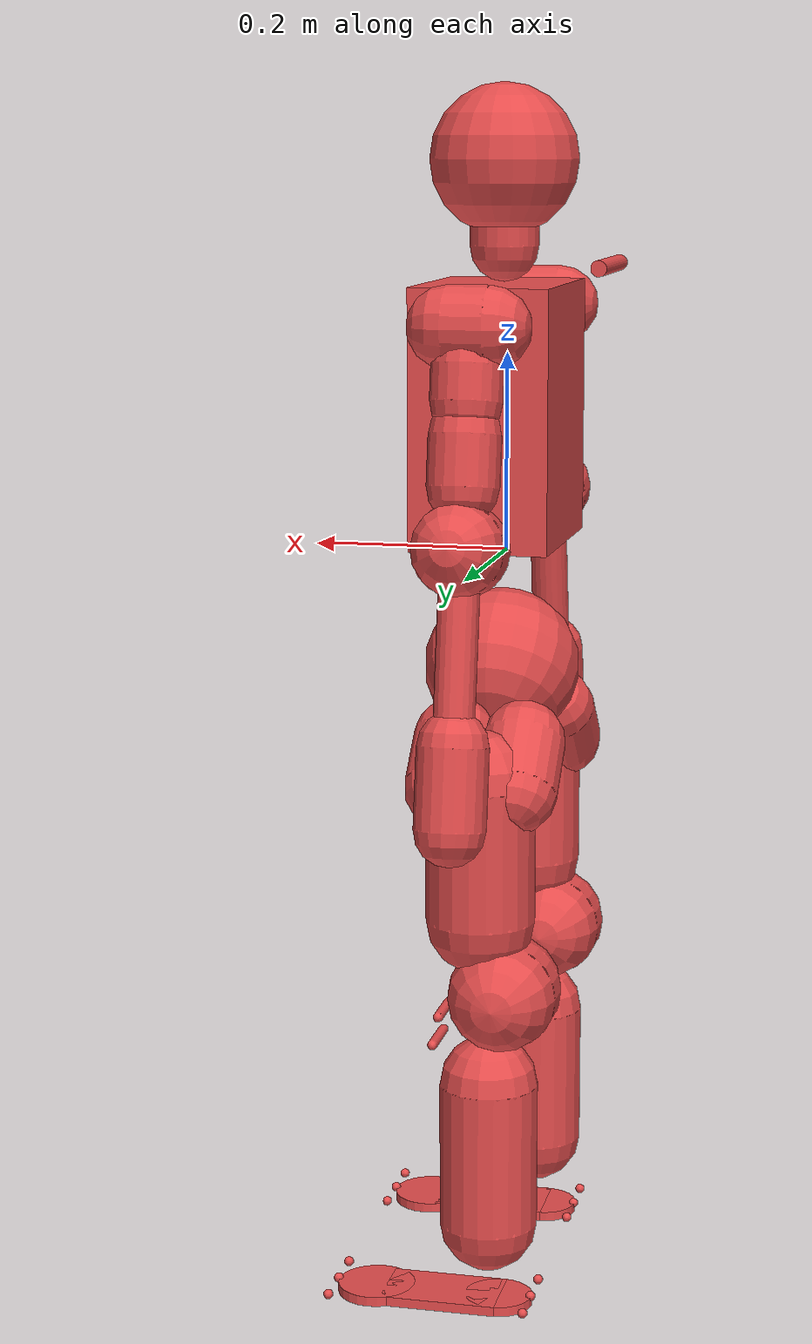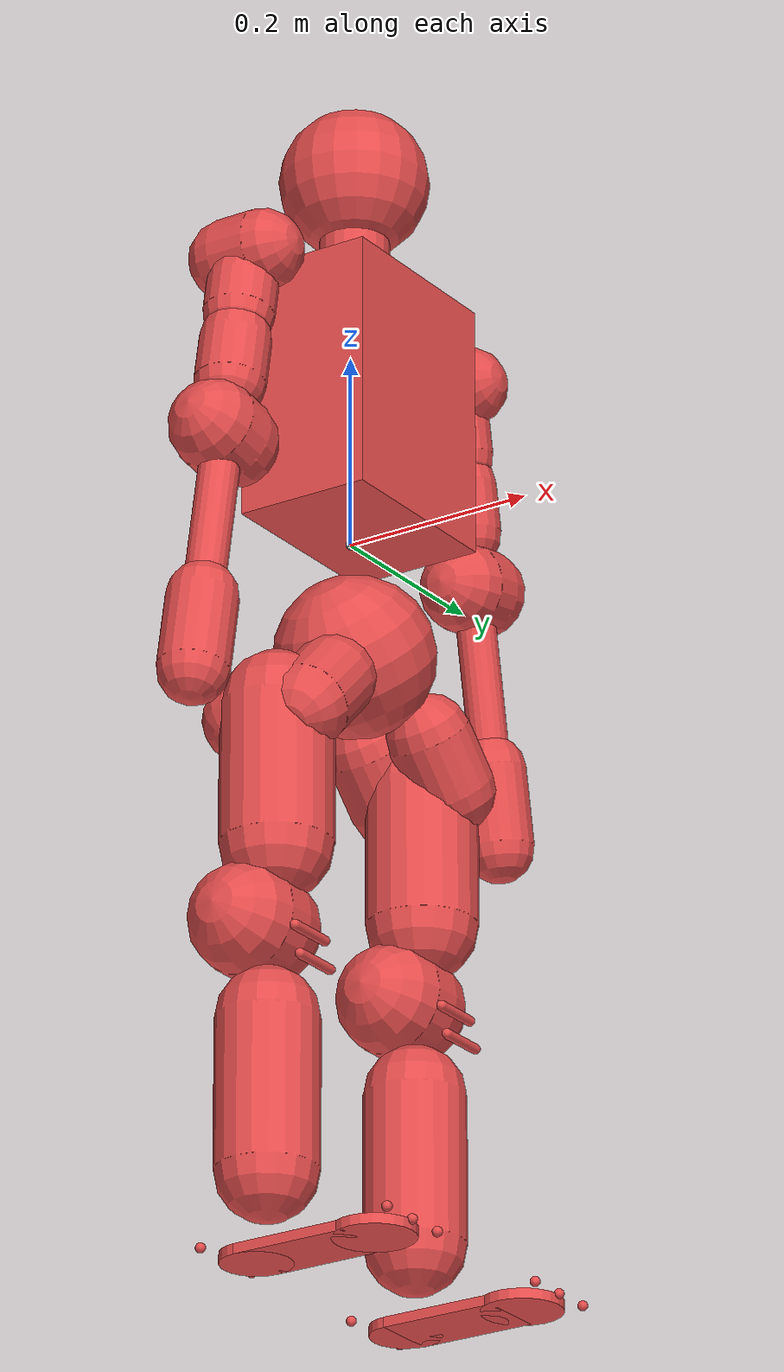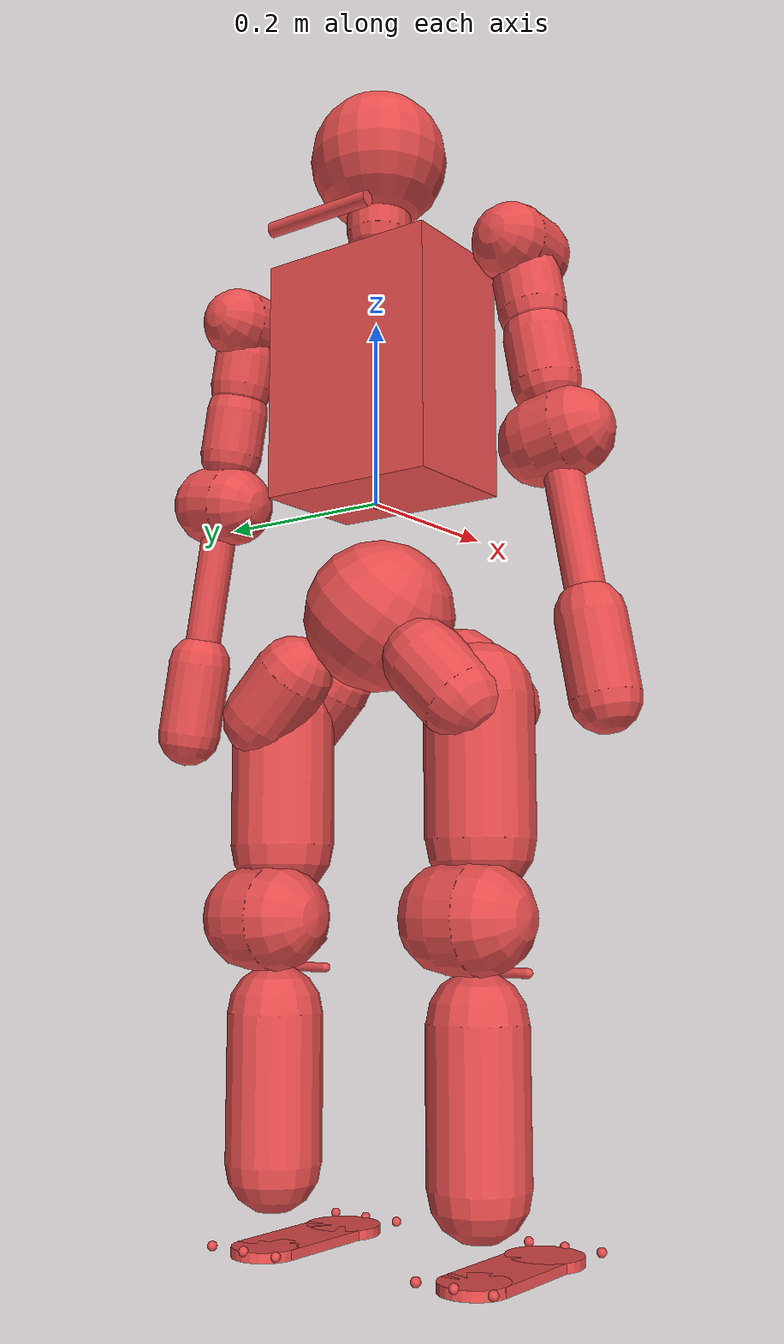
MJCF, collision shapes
<mujoco model="biped_s17">
  <compiler angle="radian" meshdir="../meshes/"/>
  <default>
    <default class="collision">
      <geom material="collision" contype="1" conaffinity="1" user="2" rgba="0.9 0.3 0.3 0.2"/>
    </default>
  </default>
  <asset>
    <material name="collision"/>
    <mesh name="torso" file="torso.STL"/>
    <mesh name="waist" file="waist.STL"/>
    <mesh name="l_leg_pitch" file="l_leg_pitch.STL"/>
    <mesh name="l_leg_roll" file="l_leg_roll.STL"/>
    <mesh name="l_leg_yaw" file="l_leg_yaw.STL"/>
    <mesh name="l_knee" file="l_knee.STL"/>
    <mesh name="l_foot_pitch" file="l_foot_pitch.STL"/>
    <mesh name="l_foot_roll" file="l_foot_roll.STL"/>
    <mesh name="r_leg_pitch" file="r_leg_pitch.STL"/>
    <mesh name="r_leg_roll" file="r_leg_roll.STL"/>
    <mesh name="r_leg_yaw" file="r_leg_yaw.STL"/>
    <mesh name="r_knee" file="r_knee.STL"/>
    <mesh name="r_foot_pitch" file="r_foot_pitch.STL"/>
    <mesh name="r_foot_roll" file="r_foot_roll.STL"/>
    <mesh name="l_arm_pitch" file="l_arm_pitch.STL"/>
    <mesh name="l_arm_roll" file="l_arm_roll.STL"/>
    <mesh name="l_arm_yaw" file="l_arm_yaw.STL"/>
    <mesh name="l_forearm" file="l_forearm.STL"/>
    <mesh name="r_arm_pitch" file="r_arm_pitch.STL"/>
    <mesh name="r_arm_roll" file="r_arm_roll.STL"/>
    <mesh name="r_arm_yaw" file="r_arm_yaw.STL"/>
    <mesh name="r_forearm" file="r_forearm.STL"/>
    <mesh name="head_yaw" file="head_yaw.STL"/>
    <mesh name="head_pitch" file="head_pitch.STL"/>
  </asset>

  <worldbody>
    <body name="base_link">
      <site name="base_imu" pos="0 0 0"/>
      <inertial pos="0.001 0 -0.122" quat="0.707107 0.707107 0 0" mass="4.8567" diaginertia="0.023 0.017 0.015"/>
      <joint name="dummy_to_base_link" type="free" limited="false" actuatorfrclimited="false"/>
      <geom type="mesh" contype="0" conaffinity="0" group="1" density="0" rgba="1 1 1 1" mesh="waist"/>
      <geom size="0.08" pos="0.005 0 -0.12" quat="0.923764 0.382961 0 0" class="collision"/>

      <body name="leg_l1_link" pos="0 0.124412 -0.221153">
          <inertial pos="-0.00063257 -0.0331968 0.0331968" quat="0.306976 0.638057 0.270546 0.652268" mass="0.625689" diaginertia="0.0019949 0.001909 0.00114913"/>
          <joint name="leg_l1_joint" pos="0 0 0" axis="0 0.707107 -0.707107" range="-3.228 2.44346" actuatorfrcrange="-150 150" armature="0.003" damping="0.2" frictionloss="0.0"/>
          <geom type="mesh" contype="0" conaffinity="0" group="1" density="0" rgba="1 1 1 1" mesh="l_leg_pitch"/>
          <geom size="0.042 0.03" pos="-0.035 -0.02 0.02" quat="0.923764 0.382961 0 0" type="capsule" class="collision"/>
          <geom size="0.042 0.03" pos="0.035 -0.02 0.02" quat="0.923764 0.382961 0 0" type="capsule" class="collision"/>
          <body name="leg_l2_link">
            <inertial pos="0.00998392 5.405e-05 -0.00920979" quat="0.998376 -0.00280518 0.0563977 0.00753194" mass="2.0316" diaginertia="0.00460461 0.00412288 0.00338322"/>
            <joint name="leg_l2_joint" pos="0 0 0" axis="1 0 0" range="-0.837758 2.40855" actuatorfrcrange="-150 150" armature="0.003" damping="0.2" frictionloss="0.0"/>
            <geom type="mesh" contype="0" conaffinity="0" group="1" density="0" rgba="1 1 1 1" mesh="l_leg_roll"/>
            <geom size="0.055 0.07" pos="0 0 -0.065" type="capsule" class="collision"/>
            <body name="leg_l3_link">
              <inertial pos="-0.0136391 -0.0013371 -0.157704" quat="0.680483 0.0858738 0.104775 0.720132" mass="3.38847" diaginertia="0.0151815 0.0146713 0.0049277"/>
              <joint name="leg_l3_joint" pos="0 0 0" axis="0 0 1" range="-1.7453 1.7453" actuatorfrcrange="-70 70" armature="0.003" damping="0.2" frictionloss="0.0"/>
              <geom type="mesh" contype="0" conaffinity="0" group="1" density="0" rgba="1 1 1 1" mesh="l_leg_yaw"/>
              <geom size="0.055 0.015" pos="-0.025 0 -0.21" quat="0.707388 0.706825 0 0" type="capsule" class="collision"/>
              <body name="leg_l4_link" pos="-0.03 0 -0.213">
                <inertial pos="0.022046 0.00442347 -0.114735" quat="0.834057 -0.0612911 0.0232855 0.547768" mass="2.61852" diaginertia="0.0123942 0.0119075 0.0029593"/>
                <joint name="leg_l4_joint" pos="0 0 0" axis="0 1 0" range="-0.0872665 2.53073" actuatorfrcrange="-150 150" armature="0.003" damping="0.2" frictionloss="0.0"/>
                <geom type="mesh" contype="0" conaffinity="0" group="1" density="0" rgba="1 1 1 1" mesh="l_knee"/>
                <geom size="0.05 0.075" pos="0.021 0 -0.17" type="capsule" class="collision"/>
                <geom size="0.005 0.025" pos="0.068 0 -0.02" quat="0.707388 0.706825 0 0" type="capsule" class="collision"/>
                <geom size="0.005 0.025" pos="0.074 0 -0.05" quat="0.707388 0.706825 0 0" type="capsule" class="collision"/>
                <body name="leg_l5_link" pos="0.03 0 -0.276">
                  <inertial pos="-0.00317025 1.08e-06 -0.00652874" quat="0.698397 0.110643 0.110643 0.698397" mass="0.108543" diaginertia="2.278e-05 1.98845e-05 1.08355e-05"/>
                  <joint name="leg_l5_joint" pos="0 0 0" axis="0 1 0" range="-0.872665 0.523599" actuatorfrcrange="-74 74" armature="0.003" damping="0.2" frictionloss="0.0"/>
                  <geom type="mesh" contype="0" conaffinity="0" group="1" density="0" rgba="1 1 1 1" mesh="l_foot_pitch"/>
                  <body name="leg_l6_link" pos="0 0 -0.018">
                    <inertial pos="0.0238891 0.00010137 -0.0169705" quat="-0.00314074 0.7384 -0.00332222 0.674348" mass="0.436108" diaginertia="0.00107223 0.000979832 0.000192516"/>
                    <joint name="leg_l6_joint" pos="0 0 0" axis="1 0 0" range="-0.261799 0.261799" actuatorfrcrange="-74 74" armature="0.003" damping="0.2" frictionloss="0.0"/>
                    <geom type="mesh" contype="0" conaffinity="0" group="1" density="0" rgba="1 1 1 1" mesh="l_foot_roll"/>
                    <geom size="0.035 0.005" pos="-0.02 0 -0.035" type="cylinder" class="collision"/>
                    <geom size="0.04 0.005" pos="0.11 0 -0.035" type="cylinder" class="collision"/>
                    <geom size="0.06 0.035 0.005" pos="0.038 0 -0.035" type="box" class="collision"/>
                    <geom size="0.005" pos="0.1510 0.0415 -0.03" type="sphere" class="collision"/>
                    <geom size="0.005" pos="-0.0538 0.0415 -0.03" type="sphere" class="collision"/>
                    <geom size="0.005" pos="0.1510 -0.0415 -0.03" type="sphere" class="collision"/>
                    <geom size="0.005" pos="-0.0538 -0.0415 -0.03" type="sphere" class="collision"/>
                    <geom size="0.005" pos="0.1510 0 -0.03" type="sphere" class="collision"/>
                    <geom size="0.005" pos="-0.0538 0 -0.03" type="sphere" class="collision"/>
                  </body>
                </body>
              </body>
            </body>
          </body>
        </body>
        <body name="leg_r1_link" pos="0 -0.124412 -0.221153">
          <inertial pos="-0.00063257 0.0331968 0.0331968" quat="0.652268 0.270546 0.638057 0.306976" mass="0.625689" diaginertia="0.0019949 0.001909 0.00114913"/>
          <joint name="leg_r1_joint" pos="0 0 0" axis="0 -0.707107 -0.707107" range="-2.44346 3.228" actuatorfrcrange="-150 150" armature="0.003" damping="0.2" frictionloss="0.0"/>
          <geom type="mesh" contype="0" conaffinity="0" group="1" density="0" rgba="1 1 1 1" mesh="r_leg_pitch"/>
          <geom size="0.042 0.03" pos="-0.035 0.02 0.02" quat="0.923764 -0.382961 0 0" type="capsule" class="collision"/>
          <geom size="0.042 0.03" pos="0.035 0.02 0.02" quat="0.923764 -0.382961 0 0" type="capsule" class="collision"/>
          <body name="leg_r2_link">
            <inertial pos="0.00998392 -5.405e-05 -0.00920979" quat="0.998376 0.00280518 0.0563977 -0.00753194" mass="2.0316" diaginertia="0.00460461 0.00412288 0.00338322"/>
            <joint name="leg_r2_joint" pos="0 0 0" axis="1 0 0" range="-2.40855 0.837758" actuatorfrcrange="-150 150" armature="0.003" damping="0.2" frictionloss="0.0"/>
            <geom type="mesh" contype="0" conaffinity="0" group="1" density="0" rgba="1 1 1 1" mesh="r_leg_roll"/>
            <geom size="0.055 0.07" pos="0 0 -0.065" type="capsule" class="collision"/>
            <body name="leg_r3_link">
              <inertial pos="-0.0136391 0.0013371 -0.157704" quat="0.720132 0.104775 0.0858738 0.680483" mass="3.38847" diaginertia="0.0151815 0.0146713 0.0049277"/>
              <joint name="leg_r3_joint" pos="0 0 0" axis="0 0 1" range="-1.7453 1.7453" actuatorfrcrange="-70 70" armature="0.003" damping="0.2" frictionloss="0.0"/>
              <geom type="mesh" contype="0" conaffinity="0" group="1" density="0" rgba="1 1 1 1" mesh="r_leg_yaw"/>
              <geom size="0.055 0.015" pos="-0.025 0 -0.21" quat="0.707388 0.706825 0 0" type="capsule" class="collision"/>
              <body name="leg_r4_link" pos="-0.03 0 -0.213">
                <inertial pos="0.022046 -0.00442347 -0.114735" quat="0.547768 0.0232855 -0.0612911 0.834057" mass="2.61852" diaginertia="0.0123942 0.0119075 0.0029593"/>
                <joint name="leg_r4_joint" pos="0 0 0" axis="0 1 0" range="-0.0872665 2.53073" actuatorfrcrange="-150 150" armature="0.003" damping="0.2" frictionloss="0.0"/>
                <geom type="mesh" contype="0" conaffinity="0" group="1" density="0" rgba="1 1 1 1" mesh="r_knee"/>
                <geom size="0.05 0.075" pos="0.021 0 -0.17" type="capsule" class="collision"/>
                <geom size="0.005 0.025" pos="0.068 0 -0.02" quat="0.707388 0.706825 0 0" type="capsule" class="collision"/>
                <geom size="0.005 0.025" pos="0.074 0 -0.05" quat="0.707388 0.706825 0 0" type="capsule" class="collision"/>
                <body name="leg_r5_link" pos="0.03 0 -0.276">
                  <inertial pos="-0.00317025 1.08e-06 -0.00652874" quat="0.698397 0.110643 0.110643 0.698397" mass="0.108543" diaginertia="2.278e-05 1.98845e-05 1.08355e-05"/>
                  <joint name="leg_r5_joint" pos="0 0 0" axis="0 1 0" range="-0.872665 0.523599" actuatorfrcrange="-74 74" armature="0.003" damping="0.2" frictionloss="0.0"/>
                  <geom type="mesh" contype="0" conaffinity="0" group="1" density="0" rgba="1 1 1 1" mesh="r_foot_pitch"/>
                  <body name="leg_r6_link" pos="0 0 -0.018">
                    <inertial pos="0.0238891 -0.00010137 -0.0169705" quat="0.00314074 0.7384 0.00332222 0.674348" mass="0.436108" diaginertia="0.00107223 0.000979832 0.000192516"/>
                    <joint name="leg_r6_joint" pos="0 0 0" axis="1 0 0" range="-0.261799 0.261799" actuatorfrcrange="-74 74" armature="0.003" damping="0.2" frictionloss="0.0"/>
                    <geom type="mesh" contype="0" conaffinity="0" group="1" density="0" rgba="1 1 1 1" mesh="r_foot_roll"/>
                    <geom size="0.035 0.005" pos="-0.02 0 -0.035" type="cylinder" class="collision"/>
                    <geom size="0.04 0.005" pos="0.11 0 -0.035" type="cylinder" class="collision"/>
                    <geom size="0.06 0.035 0.005" pos="0.038 0 -0.035" type="box" class="collision"/>
                    <geom size="0.005" pos="0.1510 0.0415 -0.03" type="sphere" class="collision"/>
                    <geom size="0.005" pos="-0.0538 0.0415 -0.03" type="sphere" class="collision"/>
                    <geom size="0.005" pos="0.1510 -0.0415 -0.03" type="sphere" class="collision"/>
                    <geom size="0.005" pos="-0.0538 -0.0415 -0.03" type="sphere" class="collision"/>
                    <geom size="0.005" pos="0.1510 0 -0.03" type="sphere" class="collision"/>
                    <geom size="0.005" pos="-0.0538 0 -0.03" type="sphere" class="collision"/>
                  </body>
                </body>
              </body>
            </body>
          </body>
        </body>
      <body name="waist_yaw_link">
        <site name="imu" pos="0 0 0" />
        <inertial pos="-0.006 0 0.145" mass="8.73" diaginertia="0.104 0.084 0.05"/>
        <joint name="waist_yaw_joint" pos="0 0 0" axis="0 0 1" range="-2.61799 2.61799" actuatorfrcrange="-50 50" armature="0.003" damping="0.2" frictionloss="0.0"/>
        <geom type="mesh" contype="0" conaffinity="0" group="1" density="0" rgba="1 1 1 1" mesh="torso"/>
        <geom size="0.07 0.1 0.13" pos="0.01 0 0.14" type="box" class="collision"/>
        <geom size="0.008 0.0625" pos="-0.102 0 0.288" quat="0.707105 0.707108 0 0" type="cylinder" class="collision"/>
      </body>
        <body name="zarm_l1_link" pos="0 0.181 0.23843">
          <inertial pos="0.01773604 -0.00289047 -0.00006872" mass="0.8476" fullinertia="0.00073101 0.00088866 0.00101122 -0.00004199 -0.00000127 -0.00000149"/>
          <joint name="zarm_l1_joint" pos="0 0 0" axis="0 1 0" range="-3.14159 2.0944" actuatorfrcrange="-14.1 14.1" armature="0.003" damping="0.2" frictionloss="0.0"/>
          <geom type="mesh" contype="0" conaffinity="0" group="1" density="0" rgba="1 1 1 1" mesh="l_arm_pitch"/>
          <geom size="0.04 0.02" quat="0.707105 0 0.707108 0" type="capsule" class="collision"/>
          <body name="zarm_l2_link" quat="0.996195 0.0871543 0 0">
            <inertial pos="0.00199256 0 -0.03214647" mass="0.3668" fullinertia="0.00053752 0.00078576 0.00057618 0.00000001 -0.00002375 0"/>
            <joint name="zarm_l2_joint" pos="0 0 0" axis="1 0 0" range="-0.52 3.316" actuatorfrcrange="-37 37" armature="0.003" damping="0.2" frictionloss="0.0"/>
            <geom type="mesh" contype="0" conaffinity="0" group="1" density="0" rgba="1 1 1 1" mesh="l_arm_roll"/>
            <geom size="0.035 0.0175" pos="0 0 -0.0525" type="capsule" class="collision"/>
            <body name="zarm_l3_link">
              <inertial pos="-0.00007730 -0.00993640 -0.15083251" mass="1.5166" fullinertia="0.00716993 0.00677305 0.00141913 0.00000142 0.00000316 -0.00085824"/>
              <joint name="zarm_l3_joint" pos="0 0 0" axis="0 0 1" range="-1.5708 1.5708" actuatorfrcrange="-37 37" armature="0.003" damping="0.2" frictionloss="0.0"/>
              <geom type="mesh" contype="0" conaffinity="0" group="1" density="0" rgba="1 1 1 1" mesh="l_arm_yaw"/>
              <geom size="0.035 0.025" pos="0 0 -0.125" type="capsule" class="collision"/>
              <body name="zarm_l4_link" pos="0 0 -0.2085">
                <inertial pos="0.00776368 -0.00672119 -0.18040057" mass="0.48320221" fullinertia="0.00308555 0.00338093 0.00054057 0 0 0"/>
                <joint name="zarm_l4_joint" pos="0 0 0" axis="0 1 0" range="-2.26893 0.08726" actuatorfrcrange="-37 37" armature="0.003" damping="0.2" frictionloss="0.0"/>
                <geom type="mesh" contype="0" conaffinity="0" group="1" density="0" rgba="1 1 1 1" mesh="l_forearm"/>
                <geom size="0.045 0.015" quat="0.707388 0.706825 0 0" type="capsule" class="collision"/>
                <geom size="0.02 0.06" pos="0 0 -0.1" type="capsule" class="collision"/>
                <geom size="0.035 0.04" pos="0 0 -0.225" type="capsule" class="collision"/>
                <body name="zarm_l5_link" pos="0 0 -0.2085">
                  <inertial pos="0 0 0" mass="0.0001" diaginertia="1e-12 1e-12 1e-12"/>
                  <geom size="0.025" type="sphere" contype="0" conaffinity="0" group="1" rgba="1 1 1 1"/>
                </body>
              </body>
            </body>
          </body>
        </body>
        <body name="zarm_r1_link" pos="0 -0.181 0.23843">
          <inertial pos="0.01773604 0.00289047 -0.00006872" mass="0.8476" fullinertia="0.00073101 0.00088866 0.00101122 0.00004199 -0.00000127 0.00000149"/>
          <joint name="zarm_r1_joint" pos="0 0 0" axis="0 1 0" range="-3.14159 2.0944" actuatorfrcrange="-14.1 14.1" armature="0.003" damping="0.2" frictionloss="0.0"/>
          <geom type="mesh" contype="0" conaffinity="0" group="1" density="0" rgba="1 1 1 1" mesh="r_arm_pitch"/>
          <geom size="0.04 0.02" quat="0.707105 0 0.707108 0" type="capsule" class="collision"/>
          <body name="zarm_r2_link" quat="0.996195 -0.0871543 0 0">
            <inertial pos="0.00199256 0 -0.03214647" mass="0.3668" fullinertia="0.00053752 0.00078576 0.00057618 -0.00000001 -0.00002375 0"/>
            <joint name="zarm_r2_joint" pos="0 0 0" axis="1 0 0" range="-3.3161 0.52" actuatorfrcrange="-37 37" armature="0.003" damping="0.2" frictionloss="0.0"/>
            <geom type="mesh" contype="0" conaffinity="0" group="1" density="0" rgba="1 1 1 1" mesh="r_arm_roll"/>
            <geom size="0.035 0.0175" pos="0 0 -0.0525" type="capsule" class="collision"/>
            <body name="zarm_r3_link">
              <inertial pos="-0.00007730 0.00993640 -0.15083251" mass="1.5166" fullinertia="0.00716993 0.00677305 0.00141913 -0.00000142 0.00000316 0.00085824"/>
              <joint name="zarm_r3_joint" pos="0 0 0" axis="0 0 1" range="-1.5708 1.5708" actuatorfrcrange="-37 37" armature="0.003" damping="0.2" frictionloss="0.0"/>
              <geom type="mesh" contype="0" conaffinity="0" group="1" density="0" rgba="1 1 1 1" mesh="r_arm_yaw"/>
              <geom size="0.035 0.025" pos="0 0 -0.125" type="capsule" class="collision"/>
              <body name="zarm_r4_link" pos="0 0 -0.2085">
                <inertial pos="0.00776368 0.00672119 -0.18040057" mass="0.48320221" fullinertia="0.00308555 0.00338093 0.00054057 0 0 0"/>
                <joint name="zarm_r4_joint" pos="0 0 0" axis="0 1 0" range="-2.26893 0.08726" actuatorfrcrange="-37 37" armature="0.003" damping="0.2" frictionloss="0.0"/>
                <geom type="mesh" contype="0" conaffinity="0" group="1" density="0" rgba="1 1 1 1" mesh="r_forearm"/>
                <geom size="0.045 0.015" quat="0.707388 0.706825 0 0" type="capsule" class="collision"/>
                <geom size="0.02 0.06" pos="0 0 -0.1" type="capsule" class="collision"/>
                <geom size="0.035 0.04" pos="0 0 -0.225" type="capsule" class="collision"/>
                <body name="zarm_r5_link" pos="0 0 -0.2085">
                  <inertial pos="0 0 0" mass="0.0001" diaginertia="1e-12 1e-12 1e-12"/>
                  <geom size="0.025" type="sphere" contype="0" conaffinity="0" group="1" rgba="1 1 1 1"/>
                </body>
              </body>
            </body>
          </body>
        </body>
        <body name="zhead_1_link" pos="0.004 0 0.35618">
          <inertial pos="-0.00081546 0.00754474 0.0168097" mass="1.03078" diaginertia="0.002156 0.00189151 0.00071659"/>
          <joint name="zhead_1_joint" pos="0 0 0" axis="0 0 1" range="-1.5708 1.5708" actuatorfrcrange="-1.5 1.5" armature="0.003" damping="0.2" frictionloss="0.0"/>
          <geom type="mesh" contype="0" conaffinity="0" group="1" density="0" rgba="1 1 1 1" mesh="head_yaw"/>
          <geom size="0.035 0.05" type="capsule" class="collision"/>
          <body name="zhead_2_link">
            <inertial pos="0.014664 0.00044662 0.0574289" quat="0 0.707107 0 0.707107" mass="0.33655" diaginertia="0.00150717 0.00141557 0.00119625"/>
            <joint name="zhead_2_joint" pos="0 0 0" axis="0 1 0" range="-0.349066 0.785398" actuatorfrcrange="-12 12" armature="0.003" damping="0.2" frictionloss="0.0"/>
            <geom type="mesh" contype="0" conaffinity="0" group="1" density="0" rgba="1 1 1 1" mesh="head_pitch"/>
            <geom size="0.075" pos="0 0 0.035" class="collision"/>
          </body>
        </body>
    </body>
  </worldbody>
  <actuator>
    <motor gear="1" joint="leg_l1_joint" name="leg_l1_joint_motor" ctrllimited="true" ctrlrange="-150 150" />
    <motor gear="1" joint="leg_l2_joint" name="leg_l2_joint_motor" ctrllimited="true" ctrlrange="-150 150" />
    <motor gear="1" joint="leg_l3_joint" name="leg_l3_joint_motor" ctrllimited="true" ctrlrange="-70 70" />
    <motor gear="1" joint="leg_l4_joint" name="leg_l4_joint_motor" ctrllimited="true" ctrlrange="-150 150" />
    <motor gear="1" joint="leg_l5_joint" name="leg_l5_joint_motor" ctrllimited="true" ctrlrange="-74 74" />
    <motor gear="1" joint="leg_l6_joint" name="leg_l6_joint_motor" ctrllimited="true" ctrlrange="-74 74" />
    <motor gear="1" joint="leg_r1_joint" name="leg_r1_joint_motor" ctrllimited="true" ctrlrange="-150 150" />
    <motor gear="1" joint="leg_r2_joint" name="leg_r2_joint_motor" ctrllimited="true" ctrlrange="-150 150" />
    <motor gear="1" joint="leg_r3_joint" name="leg_r3_joint_motor" ctrllimited="true" ctrlrange="-70 70" />
    <motor gear="1" joint="leg_r4_joint" name="leg_r4_joint_motor" ctrllimited="true" ctrlrange="-150 150" />
    <motor gear="1" joint="leg_r5_joint" name="leg_r5_joint_motor" ctrllimited="true" ctrlrange="-74 74" />
    <motor gear="1" joint="leg_r6_joint" name="leg_r6_joint_motor" ctrllimited="true" ctrlrange="-74 74" />
    <motor gear="1" joint="waist_yaw_joint" name="waist_yaw_joint_motor" ctrllimited="true" ctrlrange="-80 80" />
    <motor gear="1" joint="zarm_l1_joint" name="zarm_l1_joint_motor" ctrllimited="true" ctrlrange="-14.1 14.1" />
    <motor gear="1" joint="zarm_l2_joint" name="zarm_l2_joint_motor" ctrllimited="true" ctrlrange="-37 37" />
    <motor gear="1" joint="zarm_l3_joint" name="zarm_l3_joint_motor" ctrllimited="true" ctrlrange="-37 37" />
    <motor gear="1" joint="zarm_l4_joint" name="zarm_l4_joint_motor" ctrllimited="true" ctrlrange="-37 37" />
    <motor gear="1" joint="zarm_r1_joint" name="zarm_r1_joint_motor" ctrllimited="true" ctrlrange="-14.1 14.1" />
    <motor gear="1" joint="zarm_r2_joint" name="zarm_r2_joint_motor" ctrllimited="true" ctrlrange="-37 37" />
    <motor gear="1" joint="zarm_r3_joint" name="zarm_r3_joint_motor" ctrllimited="true" ctrlrange="-37 37" />
    <motor gear="1" joint="zarm_r4_joint" name="zarm_r4_joint_motor" ctrllimited="true" ctrlrange="-37 37" />
    <motor gear="1" joint="zhead_1_joint" name="zhead_1_joint_motor" ctrllimited="true" ctrlrange="-14.1 14.1" />
    <motor gear="1" joint="zhead_2_joint" name="zhead_2_joint_motor" ctrllimited="true" ctrlrange="-14.1 14.1" />
  </actuator>
  <sensor>
    <gyro name="base_gyro" site="base_imu"/>
    <framequat name="base_quat" objtype="site" objname="base_imu"/>
    <accelerometer name="BodyAcc" site="imu" />
    <velocimeter name="BodyVel" site="imu" />
    <gyro name="BodyGyro" site="imu" />
    <framepos name="BodyPos" objtype="site" objname="imu" />
    <framequat name="BodyQuat" objtype="site" objname="imu" />
    <jointpos name="leg_l1_joint_pos" joint="leg_l1_joint" />
    <jointpos name="leg_l2_joint_pos" joint="leg_l2_joint" />
    <jointpos name="leg_l3_joint_pos" joint="leg_l3_joint" />
    <jointpos name="leg_l4_joint_pos" joint="leg_l4_joint" />
    <jointpos name="leg_l5_joint_pos" joint="leg_l5_joint" />
    <jointpos name="leg_l6_joint_pos" joint="leg_l6_joint" />
    <jointpos name="leg_r1_joint_pos" joint="leg_r1_joint" />
    <jointpos name="leg_r2_joint_pos" joint="leg_r2_joint" />
    <jointpos name="leg_r3_joint_pos" joint="leg_r3_joint" />
    <jointpos name="leg_r4_joint_pos" joint="leg_r4_joint" />
    <jointpos name="leg_r5_joint_pos" joint="leg_r5_joint" />
    <jointpos name="leg_r6_joint_pos" joint="leg_r6_joint" />
    <jointpos name="waist_yaw_joint_pos" joint="waist_yaw_joint" />
    <jointpos name="zarm_l1_joint_pos" joint="zarm_l1_joint" />
    <jointpos name="zarm_l2_joint_pos" joint="zarm_l2_joint" />
    <jointpos name="zarm_l3_joint_pos" joint="zarm_l3_joint" />
    <jointpos name="zarm_l4_joint_pos" joint="zarm_l4_joint" />
    <jointpos name="zarm_r1_joint_pos" joint="zarm_r1_joint" />
    <jointpos name="zarm_r2_joint_pos" joint="zarm_r2_joint" />
    <jointpos name="zarm_r3_joint_pos" joint="zarm_r3_joint" />
    <jointpos name="zarm_r4_joint_pos" joint="zarm_r4_joint" />
    <jointpos name="zhead_1_joint_pos" joint="zhead_1_joint" />
    <jointpos name="zhead_2_joint_pos" joint="zhead_2_joint" />
    <jointvel name="leg_l1_joint_vel" joint="leg_l1_joint" />
    <jointvel name="leg_l2_joint_vel" joint="leg_l2_joint" />
    <jointvel name="leg_l3_joint_vel" joint="leg_l3_joint" />
    <jointvel name="leg_l4_joint_vel" joint="leg_l4_joint" />
    <jointvel name="leg_l5_joint_vel" joint="leg_l5_joint" />
    <jointvel name="leg_l6_joint_vel" joint="leg_l6_joint" />
    <jointvel name="leg_r1_joint_vel" joint="leg_r1_joint" />
    <jointvel name="leg_r2_joint_vel" joint="leg_r2_joint" />
    <jointvel name="leg_r3_joint_vel" joint="leg_r3_joint" />
    <jointvel name="leg_r4_joint_vel" joint="leg_r4_joint" />
    <jointvel name="leg_r5_joint_vel" joint="leg_r5_joint" />
    <jointvel name="leg_r6_joint_vel" joint="leg_r6_joint" />
    <jointvel name="waist_yaw_joint_vel" joint="waist_yaw_joint" />
    <jointvel name="zarm_l1_joint_vel" joint="zarm_l1_joint" />
    <jointvel name="zarm_l2_joint_vel" joint="zarm_l2_joint" />
    <jointvel name="zarm_l3_joint_vel" joint="zarm_l3_joint" />
    <jointvel name="zarm_l4_joint_vel" joint="zarm_l4_joint" />
    <jointvel name="zarm_r1_joint_vel" joint="zarm_r1_joint" />
    <jointvel name="zarm_r2_joint_vel" joint="zarm_r2_joint" />
    <jointvel name="zarm_r3_joint_vel" joint="zarm_r3_joint" />
    <jointvel name="zarm_r4_joint_vel" joint="zarm_r4_joint" />
    <jointvel name="zhead_1_joint_vel" joint="zhead_1_joint" />
    <jointvel name="zhead_2_joint_vel" joint="zhead_2_joint" />
  </sensor>
</mujoco>
